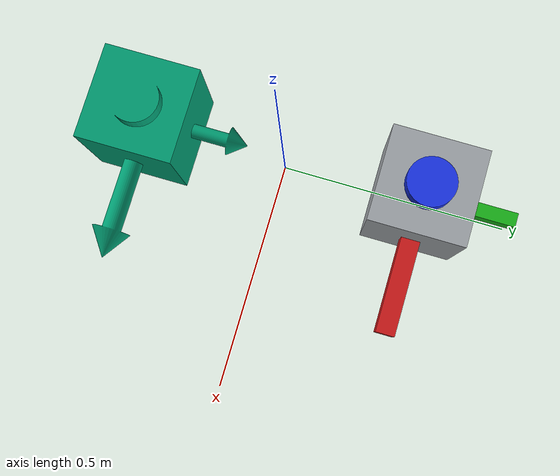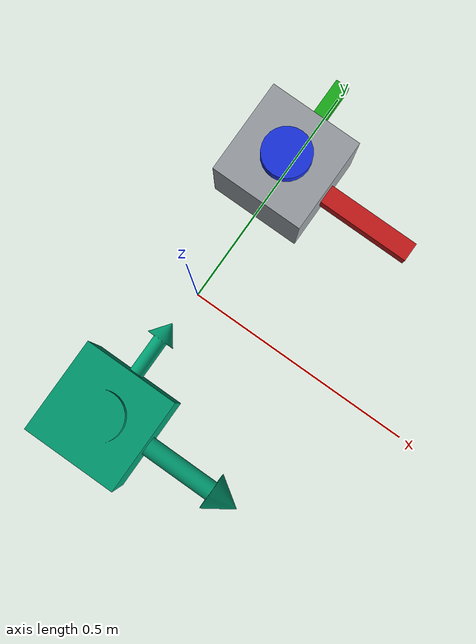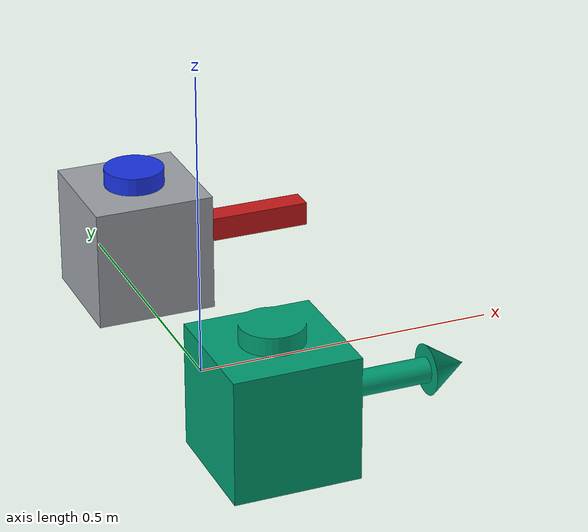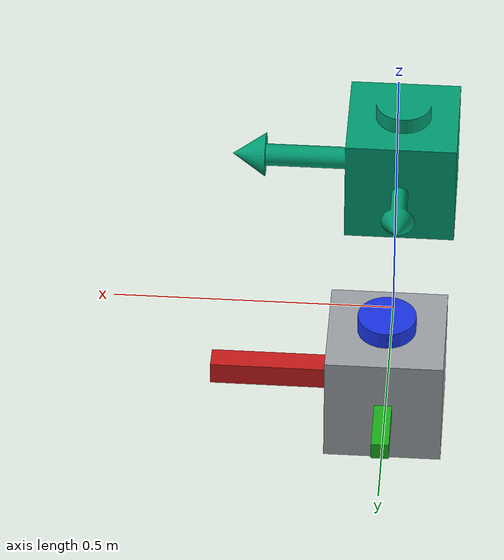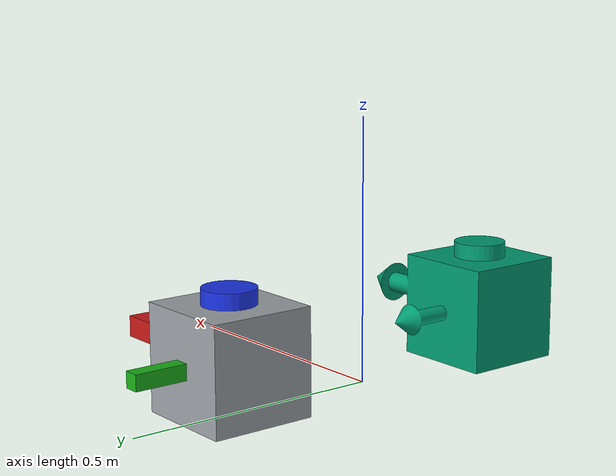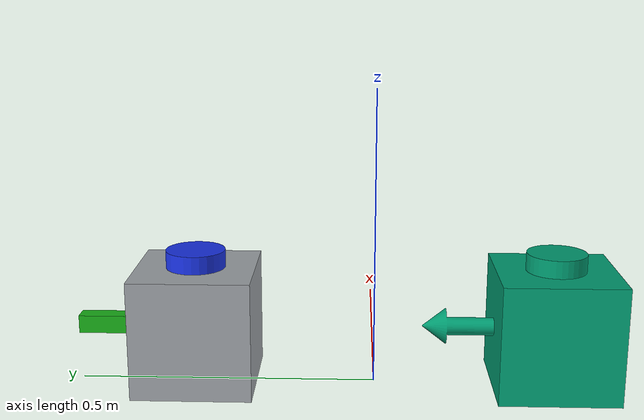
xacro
<?xml version="1.0"?>
<robot name="mesh_test" xmlns:xacro="http://www.ros.org/wiki/xacro">

  <xacro:include filename="../materials.xacro"/>
  <xacro:include filename="../inertial_macros.xacro"/>

  <xacro:property name="cube" value="0.2"/>
  <xacro:property name="mesh_dir" value="package://serabot_description/meshes/test"/>

  <!-- A link holding one test object, fixed to base_footprint at (0, y, cube/2). -->
  <xacro:macro name="test_object" params="name y **visuals">
    <joint name="${name}_joint" type="fixed">
      <parent link="base_footprint"/>
      <child link="${name}"/>
      <origin xyz="0 ${y} ${cube / 2}" rpy="0 0 0"/>
    </joint>
    <link name="${name}">
      <xacro:insert_block name="visuals"/>
      <collision>
        <geometry>
          <box size="${cube} ${cube} ${cube}"/>
        </geometry>
      </collision>
      <xacro:inertial_box mass="1.0" x="${cube}" y="${cube}" z="${cube}"/>
    </link>
  </xacro:macro>

  <xacro:macro name="mesh_visual" params="file">
    <visual>
      <geometry>
        <mesh filename="${mesh_dir}/${file}"/>
      </geometry>
    </visual>
  </xacro:macro>

  <link name="base_footprint"/>

  <xacro:test_object name="ref_primitive" y="0.3">
    <visuals>
      <visual>
        <geometry>
          <box size="${cube} ${cube} ${cube}"/>
        </geometry>
        <xacro:serabot_material name="grey"/>
      </visual>
      <visual>
        <origin xyz="0.2 0 0" rpy="0 0 0"/>
        <geometry>
          <box size="0.2 0.04 0.04"/>
        </geometry>
        <xacro:serabot_material name="red"/>
      </visual>
      <visual>
        <origin xyz="0 0.15 0" rpy="0 0 0"/>
        <geometry>
          <box size="0.03 0.1 0.03"/>
        </geometry>
        <material name="test_green">
          <color rgba="0.1 0.7 0.1 1.0"/>
        </material>
      </visual>
      <visual>
        <origin xyz="0 0 0.115" rpy="0 0 0"/>
        <geometry>
          <cylinder radius="0.05" length="0.03"/>
        </geometry>
        <material name="test_blue">
          <color rgba="0.1 0.2 0.9 1.0"/>
        </material>
      </visual>
    </visuals>
  </xacro:test_object>

  <xacro:test_object name="obj" y="-0.3">
    <visuals>
      <xacro:mesh_visual file="orientation_cube.obj"/>
    </visuals>
  </xacro:test_object>

  <!-- Keep the test object still in Gazebo -->
  <gazebo>
    <static>true</static>
  </gazebo>

</robot>

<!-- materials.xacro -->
<robot xmlns:xacro="http://www.ros.org/wiki/xacro">

  <xacro:property name="serabot_colors" value="${dict(
      green='0.18 0.52 0.24 1.0',
      leaf='0.55 0.78 0.30 1.0',
      terracotta='0.82 0.40 0.18 1.0',
      dark='0.16 0.17 0.18 1.0',
      grey='0.62 0.64 0.66 1.0',
      rubber='0.05 0.05 0.05 1.0',
      red='0.80 0.10 0.10 1.0')}"/>

  <xacro:macro name="serabot_material" params="name">
    <material name="serabot_${name}">
      <color rgba="${serabot_colors[name]}"/>
    </material>
  </xacro:macro>

</robot>

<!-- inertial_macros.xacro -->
<robot xmlns:xacro="http://www.ros.org/wiki/xacro">

  <xacro:macro name="inertial_box" params="mass x y z xyz:='0 0 0' rpy:='0 0 0'">
    <inertial>
      <origin xyz="${xyz}" rpy="${rpy}"/>
      <mass value="${mass}"/>
      <inertia ixx="${mass * (y * y + z * z) / 12}" ixy="0" ixz="0"
               iyy="${mass * (x * x + z * z) / 12}" iyz="0"
               izz="${mass * (x * x + y * y) / 12}"/>
    </inertial>
  </xacro:macro>

  <xacro:macro name="inertial_cylinder" params="mass radius length xyz:='0 0 0' rpy:='0 0 0'">
    <inertial>
      <origin xyz="${xyz}" rpy="${rpy}"/>
      <mass value="${mass}"/>
      <inertia ixx="${mass * (3 * radius * radius + length * length) / 12}" ixy="0" ixz="0"
               iyy="${mass * (3 * radius * radius + length * length) / 12}" iyz="0"
               izz="${mass * radius * radius / 2}"/>
    </inertial>
  </xacro:macro>

  <xacro:macro name="inertial_sphere" params="mass radius xyz:='0 0 0'">
    <inertial>
      <origin xyz="${xyz}" rpy="0 0 0"/>
      <mass value="${mass}"/>
      <inertia ixx="${2 * mass * radius * radius / 5}" ixy="0" ixz="0"
               iyy="${2 * mass * radius * radius / 5}" iyz="0"
               izz="${2 * mass * radius * radius / 5}"/>
    </inertial>
  </xacro:macro>

</robot>
